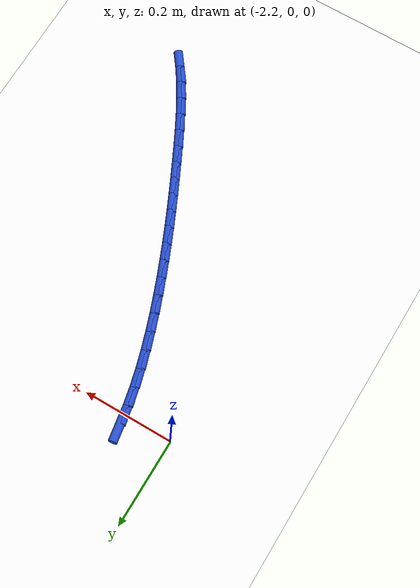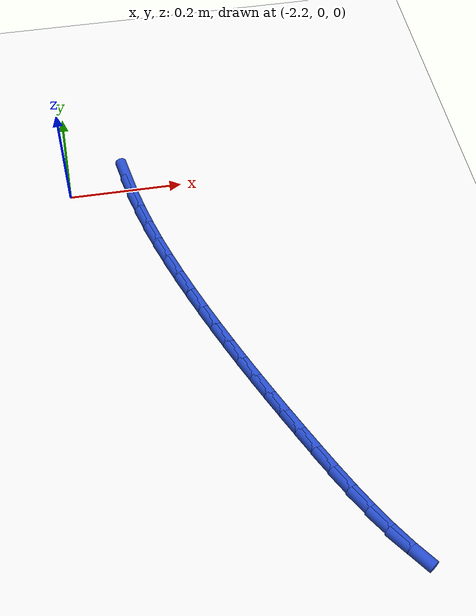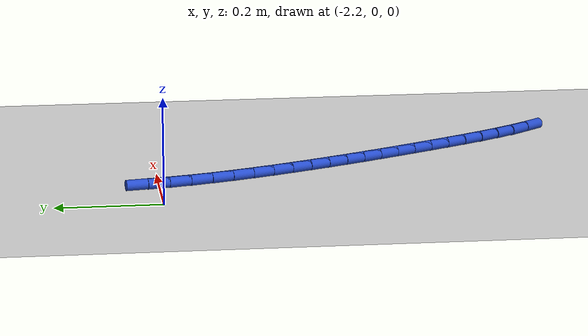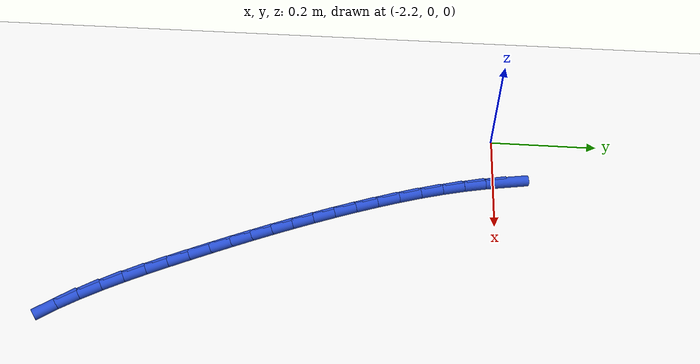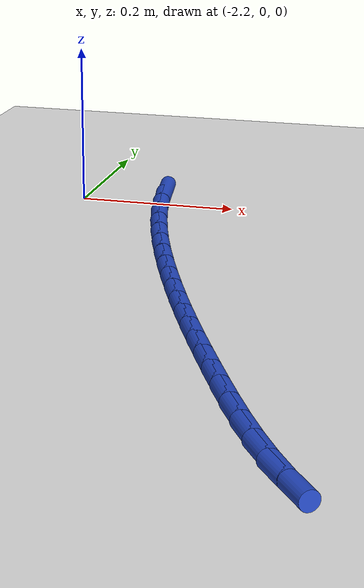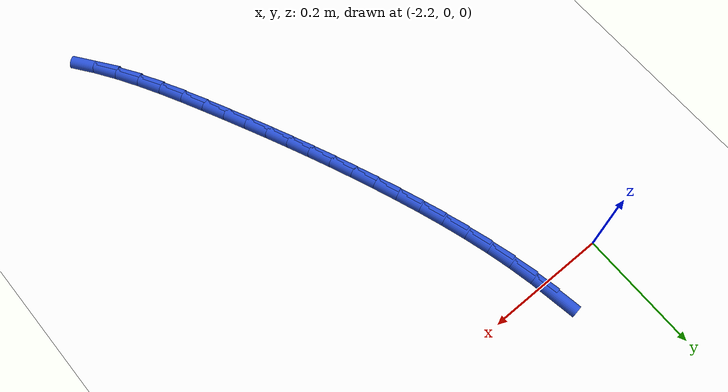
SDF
<sdf version="1.6">
 <world name="default">
  <model name="ground_plane">
   <static>1</static>
   <link name="link">
    <collision name="collision">
     <geometry><plane><normal>0 0 1</normal><size>100 100</size></plane></geometry>
     <surface><friction><ode><mu>100</mu><mu2>50</mu2></ode></friction></surface>
    </collision>
    <visual name="visual">
     <cast_shadows>0</cast_shadows>
     <geometry><plane><normal>0 0 1</normal><size>100 100</size></plane></geometry>
     <material>
      <script><uri>file://media/materials/scripts/gazebo.material</uri><name>Gazebo/WhiteGlow</name></script>
     </material>
    </visual>
   </link>
  </model>
  <model name="line">
   <link name="link_85">
    <pose>-2.0956115645204174 0.023785290790533778 0.01 0 1.57 -1.4057213995367421</pose>
    <collision name="collision">
     <geometry><cylinder><radius>0.01</radius><length>0.08</length></cylinder></geometry>
    </collision>
    <visual name="visual">
     <material>
      <script><name>Gazebo/Blue</name><uri>file://media/materials/scripts/gazebo.material</uri></script>
     </material>
     <geometry><cylinder><radius>0.01</radius><length>0.08</length></cylinder></geometry>
    </visual>
   </link>
   <link name="link_86">
    <pose>-2.088970978852672 -0.016076351774462 0.01 0 1.57 -1.361848508772269</pose>
    <collision name="collision">
     <geometry><cylinder><radius>0.01</radius><length>0.08</length></cylinder></geometry>
    </collision>
    <visual name="visual">
     <material>
      <script><name>Gazebo/Blue</name><uri>file://media/materials/scripts/gazebo.material</uri></script>
     </material>
     <geometry><cylinder><radius>0.01</radius><length>0.08</length></cylinder></geometry>
    </visual>
   </link>
   <link name="link_87">
    <pose>-2.0804819700540995 -0.05611078099821016 0.01 0 1.57 -1.3237948822663617</pose>
    <collision name="collision">
     <geometry><cylinder><radius>0.01</radius><length>0.08</length></cylinder></geometry>
    </collision>
    <visual name="visual">
     <material>
      <script><name>Gazebo/Blue</name><uri>file://media/materials/scripts/gazebo.material</uri></script>
     </material>
     <geometry><cylinder><radius>0.01</radius><length>0.08</length></cylinder></geometry>
    </visual>
   </link>
   <link name="link_88">
    <pose>-2.0703872304949646 -0.09614539422940023 0.01 0 1.57 -1.2909068197771045</pose>
    <collision name="collision">
     <geometry><cylinder><radius>0.01</radius><length>0.08</length></cylinder></geometry>
    </collision>
    <visual name="visual">
     <material>
      <script><name>Gazebo/Blue</name><uri>file://media/materials/scripts/gazebo.material</uri></script>
     </material>
     <geometry><cylinder><radius>0.01</radius><length>0.08</length></cylinder></geometry>
    </visual>
   </link>
   <link name="link_89">
    <pose>-2.058929452545531 -0.13600758881672265 0.01 0 1.57 -1.2626406506974874</pose>
    <collision name="collision">
     <geometry><cylinder><radius>0.01</radius><length>0.08</length></cylinder></geometry>
    </collision>
    <visual name="visual">
     <material>
      <script><name>Gazebo/Blue</name><uri>file://media/materials/scripts/gazebo.material</uri></script>
     </material>
     <geometry><cylinder><radius>0.01</radius><length>0.08</length></cylinder></geometry>
    </visual>
   </link>
   <link name="link_90">
    <pose>-2.046351328576062 -0.17552476210886545 0.01 0 1.57 -1.2385613952815209</pose>
    <collision name="collision">
     <geometry><cylinder><radius>0.01</radius><length>0.08</length></cylinder></geometry>
    </collision>
    <visual name="visual">
     <material>
      <script><name>Gazebo/Blue</name><uri>file://media/materials/scripts/gazebo.material</uri></script>
     </material>
     <geometry><cylinder><radius>0.01</radius><length>0.08</length></cylinder></geometry>
    </visual>
   </link>
   <link name="link_91">
    <pose>-2.0328955509568214 -0.21452431145451903 0.01 0 1.57 -1.2183397726622067</pose>
    <collision name="collision">
     <geometry><cylinder><radius>0.01</radius><length>0.08</length></cylinder></geometry>
    </collision>
    <visual name="visual">
     <material>
      <script><name>Gazebo/Blue</name><uri>file://media/materials/scripts/gazebo.material</uri></script>
     </material>
     <geometry><cylinder><radius>0.01</radius><length>0.08</length></cylinder></geometry>
    </visual>
   </link>
   <link name="link_92">
    <pose>-2.018804812058072 -0.2528336342023731 0.01 0 1.57 -1.2017508928153604</pose>
    <collision name="collision">
     <geometry><cylinder><radius>0.01</radius><length>0.08</length></cylinder></geometry>
    </collision>
    <visual name="visual">
     <material>
      <script><name>Gazebo/Blue</name><uri>file://media/materials/scripts/gazebo.material</uri></script>
     </material>
     <geometry><cylinder><radius>0.01</radius><length>0.08</length></cylinder></geometry>
    </visual>
   </link>
   <link name="link_93">
    <pose>-2.0043218038691 -0.2902801282018741 0.01 0 1.57 -1.188116173954431</pose>
    <collision name="collision">
     <geometry><cylinder><radius>0.01</radius><length>0.08</length></cylinder></geometry>
    </collision>
    <visual name="visual">
     <material>
      <script><name>Gazebo/Blue</name><uri>file://media/materials/scripts/gazebo.material</uri></script>
     </material>
     <geometry><cylinder><radius>0.01</radius><length>0.08</length></cylinder></geometry>
    </visual>
   </link>
   <link name="link_94">
    <pose>-1.98963882132976 -0.3267574329772842 0.01 0 1.57 -1.175388659194324</pose>
    <collision name="collision">
     <geometry><cylinder><radius>0.01</radius><length>0.08</length></cylinder></geometry>
    </collision>
    <visual name="visual">
     <material>
      <script><name>Gazebo/Blue</name><uri>file://media/materials/scripts/gazebo.material</uri></script>
     </material>
     <geometry><cylinder><radius>0.01</radius><length>0.08</length></cylinder></geometry>
    </visual>
   </link>
   <link name="link_95">
    <pose>-1.9747583160606907 -0.36240871733204444 0.01 0 1.57 -1.163287598585335</pose>
    <collision name="collision">
     <geometry><cylinder><radius>0.01</radius><length>0.08</length></cylinder></geometry>
    </collision>
    <visual name="visual">
     <material>
      <script><name>Gazebo/Blue</name><uri>file://media/materials/scripts/gazebo.material</uri></script>
     </material>
     <geometry><cylinder><radius>0.01</radius><length>0.08</length></cylinder></geometry>
    </visual>
   </link>
   <link name="link_96">
    <pose>-1.9596380458873444 -0.39743589541045765 0.01 0 1.57 -1.1520344035317873</pose>
    <collision name="collision">
     <geometry><cylinder><radius>0.01</radius><length>0.08</length></cylinder></geometry>
    </collision>
    <visual name="visual">
     <material>
      <script><name>Gazebo/Blue</name><uri>file://media/materials/scripts/gazebo.material</uri></script>
     </material>
     <geometry><cylinder><radius>0.01</radius><length>0.08</length></cylinder></geometry>
    </visual>
   </link>
   <link name="link_97">
    <pose>-1.9442357686351726 -0.43204088135682606 0.01 0 1.57 -1.141830613018454</pose>
    <collision name="collision">
     <geometry><cylinder><radius>0.01</radius><length>0.08</length></cylinder></geometry>
    </collision>
    <visual name="visual">
     <material>
      <script><name>Gazebo/Blue</name><uri>file://media/materials/scripts/gazebo.material</uri></script>
     </material>
     <geometry><cylinder><radius>0.01</radius><length>0.08</length></cylinder></geometry>
    </visual>
   </link>
   <link name="link_98">
    <pose>-1.9285092421296268 -0.4664255893154515 0.01 0 1.57 -1.132846450079218</pose>
    <collision name="collision">
     <geometry><cylinder><radius>0.01</radius><length>0.08</length></cylinder></geometry>
    </collision>
    <visual name="visual">
     <material>
      <script><name>Gazebo/Blue</name><uri>file://media/materials/scripts/gazebo.material</uri></script>
     </material>
     <geometry><cylinder><radius>0.01</radius><length>0.08</length></cylinder></geometry>
    </visual>
   </link>
   <link name="link_99">
    <pose>-1.9124162241961584 -0.5007919334306369 0.01 0 1.57 -1.1252117474069823</pose>
    <collision name="collision">
     <geometry><cylinder><radius>0.01</radius><length>0.08</length></cylinder></geometry>
    </collision>
    <visual name="visual">
     <material>
      <script><name>Gazebo/Blue</name><uri>file://media/materials/scripts/gazebo.material</uri></script>
     </material>
     <geometry><cylinder><radius>0.01</radius><length>0.08</length></cylinder></geometry>
    </visual>
   </link>
   <link name="link_100">
    <pose>-1.8959144726602202 -0.5353418278466829 0.01 0 1.57 -1.1188781060806143</pose>
    <collision name="collision">
     <geometry><cylinder><radius>0.01</radius><length>0.08</length></cylinder></geometry>
    </collision>
    <visual name="visual">
     <material>
      <script><name>Gazebo/Blue</name><uri>file://media/materials/scripts/gazebo.material</uri></script>
     </material>
     <geometry><cylinder><radius>0.01</radius><length>0.08</length></cylinder></geometry>
    </visual>
   </link>
   <link name="link_101">
    <pose>-1.8789599061248088 -0.5702692283950533 0.01 0 1.57 -1.1096223943813286</pose>
    <collision name="collision">
     <geometry><cylinder><radius>0.01</radius><length>0.08</length></cylinder></geometry>
    </collision>
    <visual name="visual">
     <material>
      <script><name>Gazebo/Blue</name><uri>file://media/materials/scripts/gazebo.material</uri></script>
     </material>
     <geometry><cylinder><radius>0.01</radius><length>0.08</length></cylinder></geometry>
    </visual>
   </link>
   <link name="link_102">
    <pose>-1.8614486559969257 -0.6055093917985234 0.01 0 1.57 -1.0923894056652772</pose>
    <collision name="collision">
     <geometry><cylinder><radius>0.01</radius><length>0.08</length></cylinder></geometry>
    </collision>
    <visual name="visual">
     <material>
      <script><name>Gazebo/Blue</name><uri>file://media/materials/scripts/gazebo.material</uri></script>
     </material>
     <geometry><cylinder><radius>0.01</radius><length>0.08</length></cylinder></geometry>
    </visual>
   </link>
   <link name="link_103">
    <pose>-1.8432053565761988 -0.640688206901964 0.01 0 1.57 -1.0667140607434757</pose>
    <collision name="collision">
     <geometry><cylinder><radius>0.01</radius><length>0.08</length></cylinder></geometry>
    </collision>
    <visual name="visual">
     <material>
      <script><name>Gazebo/Blue</name><uri>file://media/materials/scripts/gazebo.material</uri></script>
     </material>
     <geometry><cylinder><radius>0.01</radius><length>0.08</length></cylinder></geometry>
    </visual>
   </link>
   <link name="link_104">
    <pose>-1.8240504374446476 -0.6754133687433745 0.01 0 1.57 -1.0321456373652003</pose>
    <collision name="collision">
     <geometry><cylinder><radius>0.01</radius><length>0.08</length></cylinder></geometry>
    </collision>
    <visual name="visual">
     <material>
      <script><name>Gazebo/Blue</name><uri>file://media/materials/scripts/gazebo.material</uri></script>
     </material>
     <geometry><cylinder><radius>0.01</radius><length>0.08</length></cylinder></geometry>
    </visual>
   </link>
   <link name="link_105">
    <pose>-1.8038043281842928 -0.7092925723607519 0.01 0 1.57 -0.9879815972707763</pose>
    <collision name="collision">
     <geometry><cylinder><radius>0.01</radius><length>0.08</length></cylinder></geometry>
    </collision>
    <visual name="visual">
     <material>
      <script><name>Gazebo/Blue</name><uri>file://media/materials/scripts/gazebo.material</uri></script>
     </material>
     <geometry><cylinder><radius>0.01</radius><length>0.08</length></cylinder></geometry>
    </visual>
   </link>
   <link name="link_106">
    <pose>-1.7822874583771544 -0.7419335127920952 0.01 0 1.57 -0.9333192725232016</pose>
    <collision name="collision">
     <geometry><cylinder><radius>0.01</radius><length>0.08</length></cylinder></geometry>
    </collision>
    <visual name="visual">
     <material>
      <script><name>Gazebo/Blue</name><uri>file://media/materials/scripts/gazebo.material</uri></script>
     </material>
     <geometry><cylinder><radius>0.01</radius><length>0.08</length></cylinder></geometry>
    </visual>
   </link>
  </model>
 </world>
</sdf>
